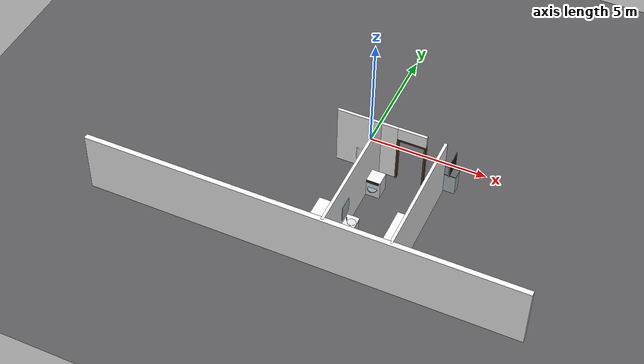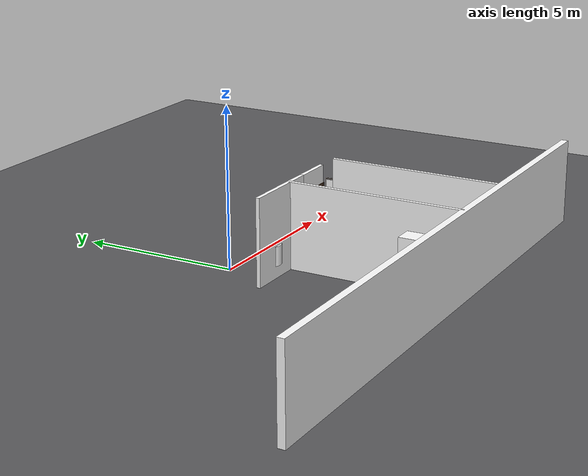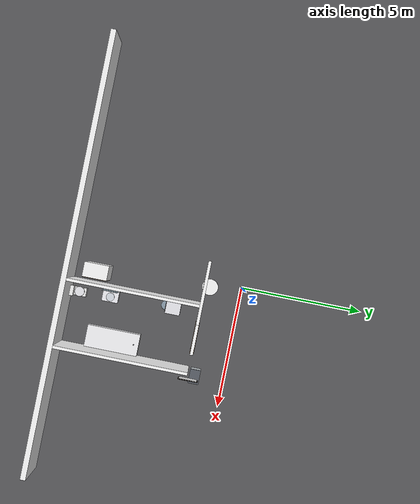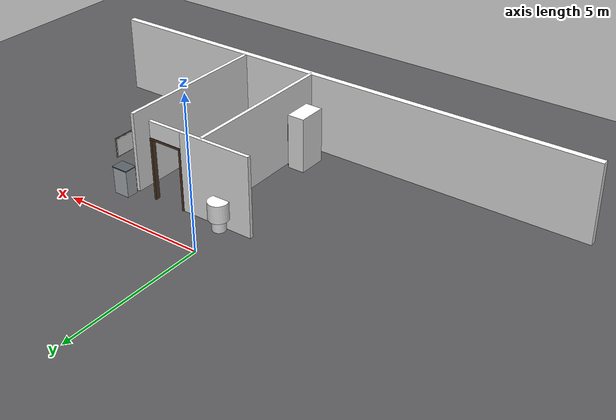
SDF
<sdf version="1.9">
 <world name="dan_house">
  <model name="ground_plane">
   <static>true</static>
   <link name="link">
    <collision name="c"><geometry><plane><normal>0 0 1</normal><size>90 90</size></plane></geometry></collision>
    <visual name="v">
     <geometry><plane><normal>0 0 1</normal><size>90 90</size></plane></geometry>
     <material><diffuse>0.35 0.35 0.36 1</diffuse></material>
    </visual>
   </link>
  </model>
  <model name="wall_south_0">
   <pose>0.000 -7.0 1.35 0 0 0</pose>
   <static>true</static>
   <link name="link">
    <collision name="c"><geometry><box><size>18.000 0.22 2.7</size></box></geometry></collision>
    <visual name="v">
     <geometry><box><size>18.000 0.22 2.7</size></box></geometry>
     <material>
      <diffuse>1 1 1 1</diffuse>
      <pbr>
       <metal>
        <albedo_map>textures/wallpaper.jpg</albedo_map>
        <metalness>0.0</metalness>
        <roughness>0.85</roughness>
       </metal>
      </pbr>
     </material>
    </visual>
   </link>
  </model>
  <model name="wall_corr_south_2">
   <pose>0.425 -1.5 1.35 0 0 0</pose>
   <static>true</static>
   <link name="link">
    <collision name="c"><geometry><box><size>2.550 0.12 2.7</size></box></geometry></collision>
    <visual name="v">
     <geometry><box><size>2.550 0.12 2.7</size></box></geometry>
     <material>
      <diffuse>1 1 1 1</diffuse>
      <pbr>
       <metal>
        <albedo_map>textures/wallpaper.jpg</albedo_map>
        <metalness>0.0</metalness>
        <roughness>0.85</roughness>
       </metal>
      </pbr>
     </material>
    </visual>
   </link>
  </model>
  <model name="wall_corr_south_door_2.3_p0">
   <pose>1.7349999999999999 -1.5 1.075 0 0 0</pose>
   <static>true</static>
   <link name="link">
    <visual name="v">
     <geometry><box><size>0.07 0.160 2.15</size></box></geometry>
     <material><diffuse>0.36 0.26 0.18 1</diffuse></material>
    </visual>
   </link>
  </model>
  <model name="wall_corr_south_door_2.3_p1">
   <pose>2.8649999999999998 -1.5 1.075 0 0 0</pose>
   <static>true</static>
   <link name="link">
    <visual name="v">
     <geometry><box><size>0.07 0.160 2.15</size></box></geometry>
     <material><diffuse>0.36 0.26 0.18 1</diffuse></material>
    </visual>
   </link>
  </model>
  <model name="wall_corr_south_door_2.3_top">
   <pose>2.3 -1.5 2.1149999999999998 0 0 0</pose>
   <static>true</static>
   <link name="link">
    <visual name="v">
     <geometry><box><size>1.2 0.160 0.07</size></box></geometry>
     <material><diffuse>0.36 0.26 0.18 1</diffuse></material>
    </visual>
   </link>
  </model>
  <model name="wall_corr_south_door_2.3_lintel">
   <pose>2.3 -1.5 2.4000000000000004 0 0 0</pose>
   <static>true</static>
   <link name="link">
    <visual name="v">
     <geometry><box><size>1.2 0.12 0.600</size></box></geometry>
     <material>
      <diffuse>1 1 1 1</diffuse>
      <pbr>
       <metal>
        <albedo_map>textures/wallpaper.jpg</albedo_map>
        <metalness>0.0</metalness>
        <roughness>0.85</roughness>
       </metal>
      </pbr>
     </material>
    </visual>
   </link>
  </model>
  <model name="wall_bed2_bath_0">
   <pose>0.96 -4.250 1.35 0 0 0</pose>
   <static>true</static>
   <link name="link">
    <collision name="c"><geometry><box><size>0.12 5.500 2.7</size></box></geometry></collision>
    <visual name="v">
     <geometry><box><size>0.12 5.500 2.7</size></box></geometry>
     <material>
      <diffuse>1 1 1 1</diffuse>
      <pbr>
       <metal>
        <albedo_map>textures/wallpaper.jpg</albedo_map>
        <metalness>0.0</metalness>
        <roughness>0.85</roughness>
       </metal>
      </pbr>
     </material>
    </visual>
   </link>
  </model>
  <model name="wall_bath_store_0">
   <pose>3.66 -4.250 1.35 0 0 0</pose>
   <static>true</static>
   <link name="link">
    <collision name="c"><geometry><box><size>0.12 5.500 2.7</size></box></geometry></collision>
    <visual name="v">
     <geometry><box><size>0.12 5.500 2.7</size></box></geometry>
     <material>
      <diffuse>1 1 1 1</diffuse>
      <pbr>
       <metal>
        <albedo_map>textures/wallpaper.jpg</albedo_map>
        <metalness>0.0</metalness>
        <roughness>0.85</roughness>
       </metal>
      </pbr>
     </material>
    </visual>
   </link>
  </model>
  <model name="window_s4">
   <pose>1.5 -6.95 1.6 0 0 0</pose>
   <static>true</static>
   <link name="link">
    <visual name="pane">
     <geometry><box><size>1.62 0.06 1.2</size></box></geometry>
     <material><diffuse>0.55 0.72 0.9 1</diffuse><emissive>0.14 0.2 0.3</emissive></material>
    </visual>
    <visual name="ft">
     <pose>0 0 0.65 0 0 0</pose>
     <geometry><box><size>1.80 0.1 0.08</size></box></geometry>
     <material><diffuse>0.95 0.95 0.95 1</diffuse></material>
    </visual>
    <visual name="fb">
     <pose>0 0 -0.65 0 0 0</pose>
     <geometry><box><size>1.80 0.1 0.08</size></box></geometry>
     <material><diffuse>0.95 0.95 0.95 1</diffuse></material>
    </visual>
    <visual name="fl">
     <pose>-0.90 0 0 0 0 0</pose>
     <geometry><box><size>0.1 0.1 1.2</size></box></geometry>
     <material><diffuse>0.95 0.95 0.95 1</diffuse></material>
    </visual>
    <visual name="fr">
     <pose>0.90 0 0 0 0 0</pose>
     <geometry><box><size>0.1 0.1 1.2</size></box></geometry>
     <material><diffuse>0.95 0.95 0.95 1</diffuse></material>
    </visual>
   </link>
  </model>
  <model name="painting_2">
   <pose>4.0 -1.44 1.6 0 0 3.1416</pose>
   <static>true</static>
   <link name="link">
    <visual name="frame">
     <geometry><box><size>0.02 0.8 0.65</size></box></geometry>
     <material><diffuse>0.15 0.12 0.1 1</diffuse></material>
    </visual>
    <visual name="canvas">
     <pose>0.025 0 0 0 0 0</pose>
     <geometry><box><size>0.03 0.72 0.57</size></box></geometry>
     <material>
      <diffuse>1 1 1 1</diffuse>
      <pbr>
       <metal>
        <albedo_map>textures/painting.jpg</albedo_map>
        <metalness>0.0</metalness>
        <roughness>0.85</roughness>
       </metal>
      </pbr>
     </material>
    </visual>
   </link>
  </model>
  <model name="wardrobe_2">
   <pose>0.45 -5.9 0 0 0 1.5708</pose>
   <static>true</static>
   <link name="link">
    <collision name="c">
     <pose>0 0 0.95 0 0 0</pose>
     <geometry><box><size>1.0 0.6 1.9</size></box></geometry>
    </collision>
    <visual name="body">
     <pose>0 0 0.95 0 0 0</pose>
     <geometry><box><size>1.0 0.6 1.9</size></box></geometry>
     <material>
      <diffuse>1 1 1 1</diffuse>
      <pbr>
       <metal>
        <albedo_map>textures/wood_dark.jpg</albedo_map>
        <metalness>0.0</metalness>
        <roughness>0.85</roughness>
       </metal>
      </pbr>
     </material>
    </visual>
    <visual name="d1">
     <pose>-0.245 -0.31 0.95 0 0 0</pose>
     <geometry><box><size>0.48 0.02 1.8</size></box></geometry>
     <material><diffuse>0.42 0.32 0.22 1</diffuse></material>
    </visual>
    <visual name="d2">
     <pose>0.245 -0.31 0.95 0 0 0</pose>
     <geometry><box><size>0.48 0.02 1.8</size></box></geometry>
     <material><diffuse>0.45 0.35 0.25 1</diffuse></material>
    </visual>
    <visual name="h1">
     <pose>-0.05 -0.33 1.0 0 0 0</pose>
     <geometry><box><size>0.03 0.03 0.12</size></box></geometry>
     <material><diffuse>0.7 0.7 0.72 1</diffuse></material>
    </visual>
    <visual name="h2">
     <pose>0.05 -0.33 1.0 0 0 0</pose>
     <geometry><box><size>0.03 0.03 0.12</size></box></geometry>
     <material><diffuse>0.7 0.7 0.72 1</diffuse></material>
    </visual>
   </link>
  </model>
  <model name="bathtub">
   <pose>3.15 -4.8 0 0 0 0.0</pose>
   <static>true</static>
   <link name="link">
    <collision name="c">
     <pose>0 0 0.280 0 0 0</pose>
     <geometry><box><size>0.9 2.2 0.560</size></box></geometry>
    </collision>
    <visual name="body">
     <pose>0 0 0.280 0 0 0</pose>
     <geometry><box><size>0.9 2.2 0.560</size></box></geometry>
     <material><diffuse>0.97 0.97 0.98 1</diffuse></material>
    </visual>
    <visual name="inner">
     <pose>0 0 0.500 0 0 0</pose>
     <geometry><box><size>0.74 1.90 0.06</size></box></geometry>
     <material><diffuse>0.82 0.86 0.9 1</diffuse></material>
    </visual>
    <visual name="tap">
     <pose>0 0.90 0.620 0 0 0</pose>
     <geometry><cylinder><radius>0.02</radius><length>0.14</length></cylinder></geometry>
     <material><diffuse>0.75 0.75 0.78 1</diffuse></material>
    </visual>
   </link>
  </model>
  <model name="toilet">
   <pose>1.45 -6.4 0 0 0 3.1416</pose>
   <static>true</static>
   <link name="link">
    <collision name="bowl_c">
     <pose>0 0.12 0.2 0 0 0</pose>
     <geometry><box><size>0.4 0.6 0.4</size></box></geometry>
    </collision>
    <visual name="base">
     <pose>0 0.12 0.2 0 0 0</pose>
     <geometry><box><size>0.36 0.55 0.38</size></box></geometry>
     <material><diffuse>0.95 0.95 0.95 1</diffuse></material>
    </visual>
    <visual name="seat">
     <pose>0 0.12 0.4 0 0 0</pose>
     <geometry><cylinder><radius>0.2</radius><length>0.06</length></cylinder></geometry>
     <material><diffuse>0.92 0.92 0.94 1</diffuse></material>
    </visual>
    <collision name="tank_c">
     <pose>0 0.44 0.590 0 0 0</pose>
     <geometry><box><size>0.42 0.2 0.380</size></box></geometry>
    </collision>
    <visual name="tank">
     <pose>0 0.44 0.590 0 0 0</pose>
     <geometry><box><size>0.42 0.2 0.380</size></box></geometry>
     <material><diffuse>0.95 0.95 0.95 1</diffuse></material>
    </visual>
   </link>
  </model>
  <model name="sink_basin">
   <pose>1.35 -5.2 0 0 0 1.5708</pose>
   <static>true</static>
   <link name="link">
    <collision name="c">
     <pose>0 0 0.42 0 0 0</pose>
     <geometry><box><size>0.62 0.46 0.84</size></box></geometry>
    </collision>
    <visual name="cab">
     <pose>0 0 0.4 0 0 0</pose>
     <geometry><box><size>0.6 0.44 0.78</size></box></geometry>
     <material><diffuse>0.9 0.9 0.9 1</diffuse></material>
    </visual>
    <visual name="top">
     <pose>0 0 0.83 0 0 0</pose>
     <geometry><box><size>0.66 0.5 0.06</size></box></geometry>
     <material><diffuse>0.95 0.95 0.97 1</diffuse></material>
    </visual>
    <visual name="basin">
     <pose>0 -0.05 0.86 0 0 0</pose>
     <geometry><cylinder><radius>0.17</radius><length>0.04</length></cylinder></geometry>
     <material><diffuse>0.85 0.87 0.9 1</diffuse></material>
    </visual>
    <visual name="tap">
     <pose>0 0.16 0.95 0 0 0</pose>
     <geometry><cylinder><radius>0.015</radius><length>0.18</length></cylinder></geometry>
     <material><diffuse>0.75 0.75 0.78 1</diffuse></material>
    </visual>
    <visual name="mirror">
     <pose>0 0.22 1.5 0 0 0</pose>
     <geometry><box><size>0.62 0.02 0.7</size></box></geometry>
     <material><diffuse>0.7 0.8 0.85 1</diffuse><emissive>0.2 0.22 0.24</emissive></material>
    </visual>
   </link>
  </model>
  <model name="washer">
   <pose>1.3 -2.6 0 0 0 0.0</pose>
   <static>true</static>
   <link name="link">
    <collision name="c">
     <pose>0 0 0.42 0 0 0</pose>
     <geometry><box><size>0.6 0.6 0.84</size></box></geometry>
    </collision>
    <visual name="body">
     <pose>0 0 0.42 0 0 0</pose>
     <geometry><box><size>0.6 0.6 0.84</size></box></geometry>
     <material><diffuse>0.93 0.93 0.95 1</diffuse></material>
    </visual>
    <visual name="door">
     <pose>0 -0.31 0.45 0 0 0</pose>
     <geometry><cylinder><radius>0.2</radius><length>0.04</length></cylinder></geometry>
     <material><diffuse>0.55 0.62 0.68 1</diffuse></material>
    </visual>
    <visual name="panel">
     <pose>0 -0.31 0.78 0 0 0</pose>
     <geometry><box><size>0.5 0.03 0.1</size></box></geometry>
     <material><diffuse>0.2 0.2 0.22 1</diffuse></material>
    </visual>
   </link>
  </model>
  <model name="cart">
   <pose>3.9 -1.2 0 0 0 3.1416</pose>
   <static>true</static>
   <link name="link">
    <collision name="c">
     <pose>0 0 0.45 0 0 0</pose>
     <geometry><box><size>0.55 0.4 0.9</size></box></geometry>
    </collision>
    <visual name="body">
     <pose>0 0 0.45 0 0 0</pose>
     <geometry><box><size>0.55 0.4 0.9</size></box></geometry>
     <material><diffuse>0.75 0.78 0.8 1</diffuse></material>
    </visual>
    <visual name="tray">
     <pose>0 0 0.92 0 0 0</pose>
     <geometry><box><size>0.58 0.43 0.03</size></box></geometry>
     <material><diffuse>0.35 0.37 0.4 1</diffuse></material>
    </visual>
   </link>
  </model>
  <model name="potted_plant_2">
   <pose>0.2 -1.29 0 0 0 0</pose>
   <static>true</static>
   <link name="link">
    <collision name="c_base">
     <pose>0 0 0.19 0 0 0</pose>
     <geometry><cylinder><radius>0.22</radius><length>0.38</length></cylinder></geometry>
    </collision>
    <visual name="v_base">
     <pose>0 0 0.19 0 0 0</pose>
     <geometry><cylinder><radius>0.22</radius><length>0.38</length></cylinder></geometry>
     <material>
      <diffuse>1 1 1 1</diffuse>
      <pbr>
       <metal>
        <albedo_map>textures/terracotta.jpg</albedo_map>
        <metalness>0.0</metalness>
        <roughness>0.85</roughness>
       </metal>
      </pbr>
     </material>
    </visual>
    <visual name="v_leaf">
     <pose>0 0 0.6799999999999999 0 0 0</pose>
     <geometry><cylinder><radius>0.33</radius><length>0.6</length></cylinder></geometry>
     <material>
      <diffuse>1 1 1 1</diffuse>
      <pbr>
       <metal><albedo_map>textures/leaf.jpg</albedo_map><metalness>0.0</metalness><roughness>0.85</roughness></metal>
      </pbr>
     </material>
    </visual>
   </link>
  </model>
 </world>
</sdf>
